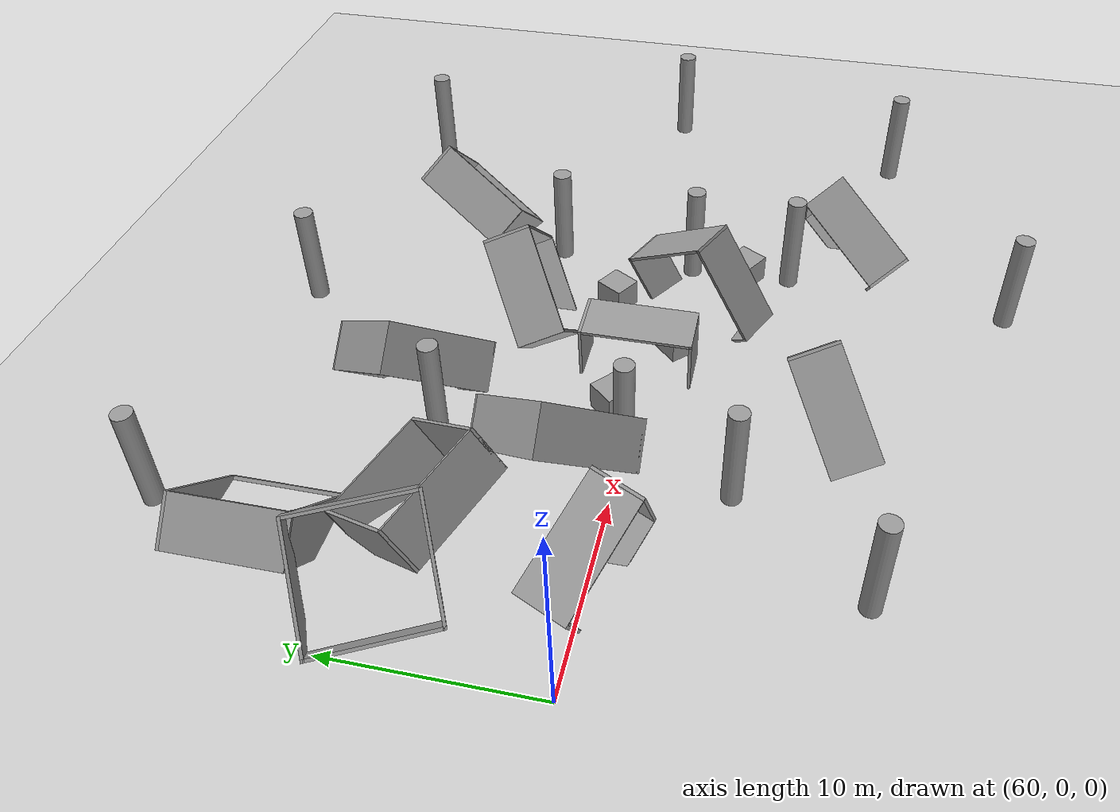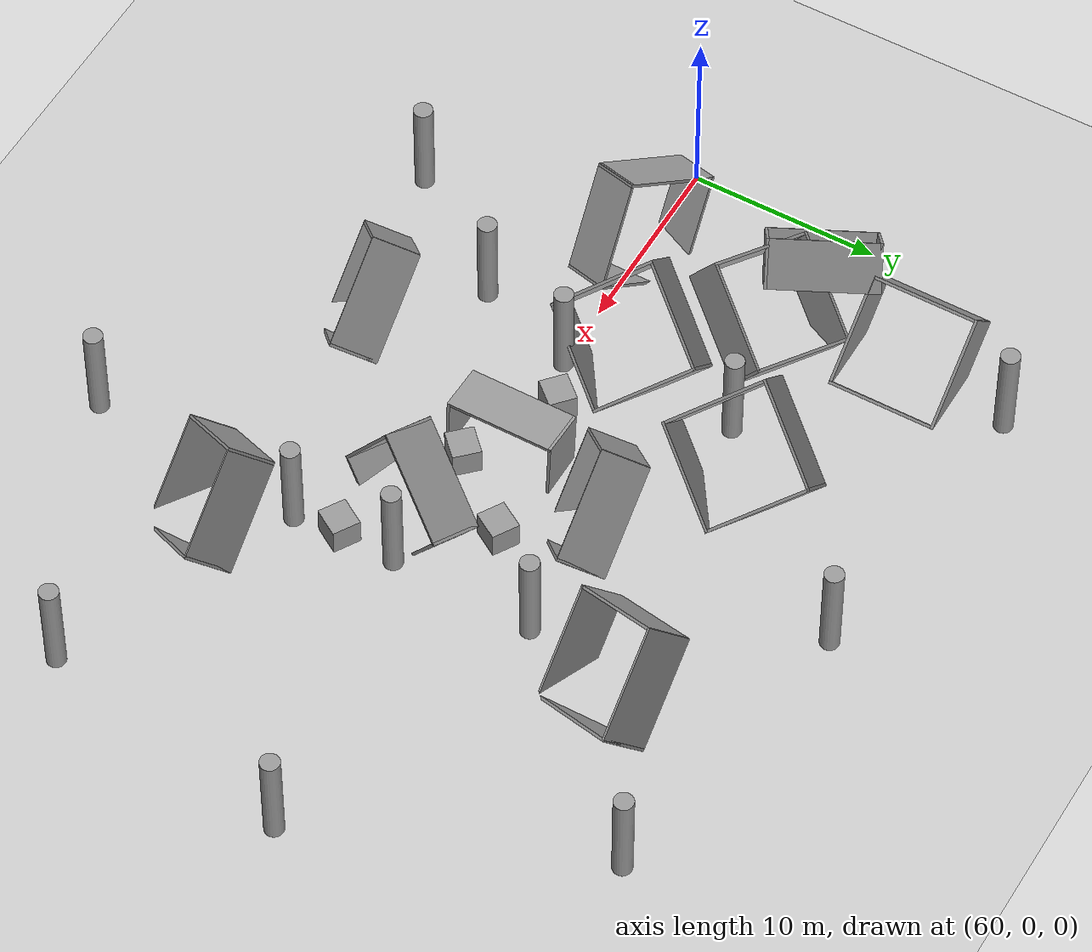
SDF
<sdf version="1.6">
 <world name="default">
  <model name="ground_plane">
   <static>1</static>
   <link name="link">
    <collision name="collision">
     <geometry><plane><normal>0 0 1</normal><size>400 400</size></plane></geometry>
     <surface><friction><ode><mu>100</mu><mu2>50</mu2></ode></friction></surface>
    </collision>
    <visual name="visual">
     <cast_shadows>0</cast_shadows>
     <geometry><plane><normal>0 0 1</normal><size>200 200</size></plane></geometry>
     <material>
      <script><uri>file://media/materials/scripts/gazebo.material</uri><name>Gazebo/Grey</name></script>
     </material>
    </visual>
    <gravity>0</gravity>
   </link>
  </model>
  <model name="unit_cylinder_0_clone_14_clone_9_clone_6_clone_3_clone_18_clone_15_clone_3">
   <static>1</static>
   <pose>66.2133 20.4668 2.40172 0 -0 0.001073</pose>
   <link name="link">
    <inertial>
     <mass>1</mass>
     <inertia><ixx>0.145833</ixx><ixy>0</ixy><ixz>0</ixz><iyy>0.145833</iyy><iyz>0</iyz><izz>0.125</izz></inertia>
    </inertial>
    <collision name="collision">
     <geometry><cylinder><radius>0.5</radius><length>6.03342</length></cylinder></geometry>
     <surface><contact><collide_without_contact>1</collide_without_contact></contact></surface>
    </collision>
    <visual name="visual">
     <geometry><cylinder><radius>0.5</radius><length>6.03342</length></cylinder></geometry>
     <material>
      <script><name>Gazebo/Grey</name><uri>file://media/materials/scripts/gazebo.material</uri></script>
     </material>
    </visual>
    <gravity>0</gravity>
   </link>
  </model>
  <model name="unit_cylinder_0_clone_14_clone_9_clone_6_clone_3_clone_18_clone_15_clone_4">
   <static>1</static>
   <pose>73.043 9.13728 2.40172 0 -0 0.001073</pose>
   <link name="link">
    <inertial>
     <mass>1</mass>
     <inertia><ixx>0.145833</ixx><ixy>0</ixy><ixz>0</ixz><iyy>0.145833</iyy><iyz>0</iyz><izz>0.125</izz></inertia>
    </inertial>
    <collision name="collision">
     <geometry><cylinder><radius>0.5</radius><length>6.03342</length></cylinder></geometry>
     <surface><contact><collide_without_contact>1</collide_without_contact></contact></surface>
    </collision>
    <visual name="visual">
     <geometry><cylinder><radius>0.5</radius><length>6.03342</length></cylinder></geometry>
     <material>
      <script><name>Gazebo/Grey</name><uri>file://media/materials/scripts/gazebo.material</uri></script>
     </material>
    </visual>
    <gravity>0</gravity>
   </link>
  </model>
  <model name="unit_cylinder_0_clone_14_clone_9_clone_6_clone_3_clone_18_clone_15_clone_5">
   <static>1</static>
   <pose>71.6287 -5.40245 2.40172 0 -0 0.001073</pose>
   <link name="link">
    <inertial>
     <mass>1</mass>
     <inertia><ixx>0.145833</ixx><ixy>0</ixy><ixz>0</ixz><iyy>0.145833</iyy><iyz>0</iyz><izz>0.125</izz></inertia>
    </inertial>
    <collision name="collision">
     <geometry><cylinder><radius>0.5</radius><length>6.03342</length></cylinder></geometry>
     <surface><contact><collide_without_contact>1</collide_without_contact></contact></surface>
    </collision>
    <visual name="visual">
     <geometry><cylinder><radius>0.5</radius><length>6.03342</length></cylinder></geometry>
     <material>
      <script><name>Gazebo/Grey</name><uri>file://media/materials/scripts/gazebo.material</uri></script>
     </material>
    </visual>
    <gravity>0</gravity>
   </link>
  </model>
  <model name="unit_cylinder_0_clone_14_clone_9_clone_6_clone_3_clone_18_clone_15_clone_6">
   <static>1</static>
   <pose>66.8761 -11.8217 2.40172 0 -0 0.001073</pose>
   <link name="link">
    <inertial>
     <mass>1</mass>
     <inertia><ixx>0.145833</ixx><ixy>0</ixy><ixz>0</ixz><iyy>0.145833</iyy><iyz>0</iyz><izz>0.125</izz></inertia>
    </inertial>
    <collision name="collision">
     <geometry><cylinder><radius>0.5</radius><length>6.03342</length></cylinder></geometry>
     <surface><contact><collide_without_contact>1</collide_without_contact></contact></surface>
    </collision>
    <visual name="visual">
     <geometry><cylinder><radius>0.5</radius><length>6.03342</length></cylinder></geometry>
     <material>
      <script><name>Gazebo/Grey</name><uri>file://media/materials/scripts/gazebo.material</uri></script>
     </material>
    </visual>
    <gravity>0</gravity>
   </link>
  </model>
  <model name="unit_cylinder_0_clone_14_clone_9_clone_6_clone_3_clone_18_clone_15_clone_7">
   <static>1</static>
   <pose>81.7922 19.1704 2.40172 0 -0 0.001073</pose>
   <link name="link">
    <inertial>
     <mass>1</mass>
     <inertia><ixx>0.145833</ixx><ixy>0</ixy><ixz>0</ixz><iyy>0.145833</iyy><iyz>0</iyz><izz>0.125</izz></inertia>
    </inertial>
    <collision name="collision">
     <geometry><cylinder><radius>0.5</radius><length>6.03342</length></cylinder></geometry>
     <surface><contact><collide_without_contact>1</collide_without_contact></contact></surface>
    </collision>
    <visual name="visual">
     <geometry><cylinder><radius>0.5</radius><length>6.03342</length></cylinder></geometry>
     <material>
      <script><name>Gazebo/Grey</name><uri>file://media/materials/scripts/gazebo.material</uri></script>
     </material>
    </visual>
    <gravity>0</gravity>
   </link>
  </model>
  <model name="unit_cylinder_0_clone_14_clone_9_clone_6_clone_3_clone_18_clone_15_clone_8">
   <static>1</static>
   <pose>88.27 6.5423 2.40172 0 -0 0.001073</pose>
   <link name="link">
    <inertial>
     <mass>1</mass>
     <inertia><ixx>0.145833</ixx><ixy>0</ixy><ixz>0</ixz><iyy>0.145833</iyy><iyz>0</iyz><izz>0.125</izz></inertia>
    </inertial>
    <collision name="collision">
     <geometry><cylinder><radius>0.5</radius><length>6.03342</length></cylinder></geometry>
     <surface><contact><collide_without_contact>1</collide_without_contact></contact></surface>
    </collision>
    <visual name="visual">
     <geometry><cylinder><radius>0.5</radius><length>6.03342</length></cylinder></geometry>
     <material>
      <script><name>Gazebo/Grey</name><uri>file://media/materials/scripts/gazebo.material</uri></script>
     </material>
    </visual>
    <gravity>0</gravity>
   </link>
  </model>
  <model name="unit_cylinder_0_clone_14_clone_9_clone_6_clone_3_clone_18_clone_15_clone_9">
   <static>1</static>
   <pose>88.19 -6.58487 2.40172 0 -0 0.001073</pose>
   <link name="link">
    <inertial>
     <mass>1</mass>
     <inertia><ixx>0.145833</ixx><ixy>0</ixy><ixz>0</ixz><iyy>0.145833</iyy><iyz>0</iyz><izz>0.125</izz></inertia>
    </inertial>
    <collision name="collision">
     <geometry><cylinder><radius>0.5</radius><length>6.03342</length></cylinder></geometry>
     <surface><contact><collide_without_contact>1</collide_without_contact></contact></surface>
    </collision>
    <visual name="visual">
     <geometry><cylinder><radius>0.5</radius><length>6.03342</length></cylinder></geometry>
     <material>
      <script><name>Gazebo/Grey</name><uri>file://media/materials/scripts/gazebo.material</uri></script>
     </material>
    </visual>
    <gravity>0</gravity>
   </link>
  </model>
  <model name="unit_cylinder_0_clone_14_clone_9_clone_6_clone_3_clone_18_clone_15_clone_10">
   <static>1</static>
   <pose>87.037 -18.3775 2.40172 0 -0 0.001073</pose>
   <link name="link">
    <inertial>
     <mass>1</mass>
     <inertia><ixx>0.145833</ixx><ixy>0</ixy><ixz>0</ixz><iyy>0.145833</iyy><iyz>0</iyz><izz>0.125</izz></inertia>
    </inertial>
    <collision name="collision">
     <geometry><cylinder><radius>0.5</radius><length>6.03342</length></cylinder></geometry>
     <surface><contact><collide_without_contact>1</collide_without_contact></contact></surface>
    </collision>
    <visual name="visual">
     <geometry><cylinder><radius>0.5</radius><length>6.03342</length></cylinder></geometry>
     <material>
      <script><name>Gazebo/Grey</name><uri>file://media/materials/scripts/gazebo.material</uri></script>
     </material>
    </visual>
    <gravity>0</gravity>
   </link>
  </model>
  <model name="unit_cylinder_0_clone_14_clone_9_clone_6_clone_3_clone_18_clone_15_clone_11">
   <static>1</static>
   <pose>97.6746 16.837 2.40172 0 -0 0.001073</pose>
   <link name="link">
    <inertial>
     <mass>1</mass>
     <inertia><ixx>0.145833</ixx><ixy>0</ixy><ixz>0</ixz><iyy>0.145833</iyy><iyz>0</iyz><izz>0.125</izz></inertia>
    </inertial>
    <collision name="collision">
     <geometry><cylinder><radius>0.5</radius><length>6.03342</length></cylinder></geometry>
     <surface><contact><collide_without_contact>1</collide_without_contact></contact></surface>
    </collision>
    <visual name="visual">
     <geometry><cylinder><radius>0.5</radius><length>6.03342</length></cylinder></geometry>
     <material>
      <script><name>Gazebo/Grey</name><uri>file://media/materials/scripts/gazebo.material</uri></script>
     </material>
    </visual>
    <gravity>0</gravity>
   </link>
  </model>
  <model name="unit_cylinder_0_clone_14_clone_9_clone_6_clone_3_clone_18_clone_15_clone_12">
   <static>1</static>
   <pose>103.808 1.8459 2.40172 0 -0 0.001073</pose>
   <link name="link">
    <inertial>
     <mass>1</mass>
     <inertia><ixx>0.145833</ixx><ixy>0</ixy><ixz>0</ixz><iyy>0.145833</iyy><iyz>0</iyz><izz>0.125</izz></inertia>
    </inertial>
    <collision name="collision">
     <geometry><cylinder><radius>0.5</radius><length>6.03342</length></cylinder></geometry>
     <surface><contact><collide_without_contact>1</collide_without_contact></contact></surface>
    </collision>
    <visual name="visual">
     <geometry><cylinder><radius>0.5</radius><length>6.03342</length></cylinder></geometry>
     <material>
      <script><name>Gazebo/Grey</name><uri>file://media/materials/scripts/gazebo.material</uri></script>
     </material>
    </visual>
    <gravity>0</gravity>
   </link>
  </model>
  <model name="unit_cylinder_0_clone_14_clone_9_clone_6_clone_3_clone_18_clone_15_clone_13">
   <static>1</static>
   <pose>100.802 -12.029 2.40172 0 -0 0.001073</pose>
   <link name="link">
    <inertial>
     <mass>1</mass>
     <inertia><ixx>0.145833</ixx><ixy>0</ixy><ixz>0</ixz><iyy>0.145833</iyy><iyz>0</iyz><izz>0.125</izz></inertia>
    </inertial>
    <collision name="collision">
     <geometry><cylinder><radius>0.5</radius><length>6.03342</length></cylinder></geometry>
     <surface><contact><collide_without_contact>1</collide_without_contact></contact></surface>
    </collision>
    <visual name="visual">
     <geometry><cylinder><radius>0.5</radius><length>6.03342</length></cylinder></geometry>
     <material>
      <script><name>Gazebo/Grey</name><uri>file://media/materials/scripts/gazebo.material</uri></script>
     </material>
    </visual>
    <gravity>0</gravity>
   </link>
  </model>
  <model name="vRoom_clone_3_clone_clone_0">
   <pose>63.8004 9.0852 1.11989 0.790651 -0.010636 -1.10345</pose>
   <link name="Wall_0">
    <collision name="Wall_0_Collision">
     <geometry><box><size>5.75 0.15 2.5</size></box></geometry>
     <pose>0 0 1.25 0 -0 0</pose>
    </collision>
    <visual name="Wall_0_Visual">
     <pose>0 0 1.25 0 -0 0</pose>
     <geometry><box><size>5.75 0.15 2.5</size></box></geometry>
     <material>
      <script><uri>file://media/materials/scripts/gazebo.material</uri><name>Gazebo/Grey</name></script>
      <ambient>1 1 1 1</ambient>
     </material>
    </visual>
    <pose>-2.8 -0 0 0 0 -1.5708</pose>
    <velocity_decay><linear>0</linear><angular>0</angular></velocity_decay>
   </link>
   <link name="Wall_1">
    <collision name="Wall_1_Collision">
     <geometry><box><size>5.75 0.15 2.5</size></box></geometry>
     <pose>0 0 1.25 0 -0 0</pose>
    </collision>
    <visual name="Wall_1_Visual">
     <pose>0 0 1.25 0 -0 0</pose>
     <geometry><box><size>5.75 0.15 2.5</size></box></geometry>
     <material>
      <script><uri>file://media/materials/scripts/gazebo.material</uri><name>Gazebo/Grey</name></script>
      <ambient>1 1 1 1</ambient>
     </material>
    </visual>
    <pose>0 -2.8 0 0 -0 0</pose>
    <velocity_decay><linear>0</linear><angular>0</angular></velocity_decay>
   </link>
   <link name="Wall_2">
    <collision name="Wall_2_Collision">
     <geometry><box><size>5.75 0.15 2.5</size></box></geometry>
     <pose>0 0 1.25 0 -0 0</pose>
    </collision>
    <visual name="Wall_2_Visual">
     <pose>0 0 1.25 0 -0 0</pose>
     <geometry><box><size>5.75 0.15 2.5</size></box></geometry>
     <material>
      <script><uri>file://media/materials/scripts/gazebo.material</uri><name>Gazebo/Grey</name></script>
      <ambient>1 1 1 1</ambient>
     </material>
    </visual>
    <pose>2.8 -0 0 0 -0 1.5708</pose>
    <velocity_decay><linear>0</linear><angular>0</angular></velocity_decay>
   </link>
   <link name="Wall_3">
    <collision name="Wall_3_Collision">
     <geometry><box><size>5.75 0.15 2.5</size></box></geometry>
     <pose>0 0 1.25 0 -0 0</pose>
    </collision>
    <visual name="Wall_3_Visual">
     <pose>0 0 1.25 0 -0 0</pose>
     <geometry><box><size>5.75 0.15 2.5</size></box></geometry>
     <material>
      <script><uri>file://media/materials/scripts/gazebo.material</uri><name>Gazebo/Grey</name></script>
      <ambient>1 1 1 1</ambient>
     </material>
    </visual>
    <pose>0 2.8 0 0 -0 3.14159</pose>
    <velocity_decay><linear>0</linear><angular>0</angular></velocity_decay>
   </link>
   <static>1</static>
  </model>
  <model name="vRoom_clone_3_clone_clone_1">
   <pose>65.8757 1.00072 2.50816 1.95875 1.01829 3e-06</pose>
   <link name="Wall_0">
    <collision name="Wall_0_Collision">
     <geometry><box><size>5.75 0.15 2.5</size></box></geometry>
     <pose>0 0 1.25 0 -0 0</pose>
    </collision>
    <visual name="Wall_0_Visual">
     <pose>0 0 1.25 0 -0 0</pose>
     <geometry><box><size>5.75 0.15 2.5</size></box></geometry>
     <material>
      <script><uri>file://media/materials/scripts/gazebo.material</uri><name>Gazebo/Grey</name></script>
      <ambient>1 1 1 1</ambient>
     </material>
    </visual>
    <pose>-2.8 -0 0 0 0 -1.5708</pose>
    <velocity_decay><linear>0</linear><angular>0</angular></velocity_decay>
   </link>
   <link name="Wall_1">
    <collision name="Wall_1_Collision">
     <geometry><box><size>5.75 0.15 2.5</size></box></geometry>
     <pose>0 0 1.25 0 -0 0</pose>
    </collision>
    <visual name="Wall_1_Visual">
     <pose>0 0 1.25 0 -0 0</pose>
     <geometry><box><size>5.75 0.15 2.5</size></box></geometry>
     <material>
      <script><uri>file://media/materials/scripts/gazebo.material</uri><name>Gazebo/Grey</name></script>
      <ambient>1 1 1 1</ambient>
     </material>
    </visual>
    <pose>0 -2.8 0 0 -0 0</pose>
    <velocity_decay><linear>0</linear><angular>0</angular></velocity_decay>
   </link>
   <link name="Wall_2">
    <collision name="Wall_2_Collision">
     <geometry><box><size>5.75 0.15 2.5</size></box></geometry>
     <pose>0 0 1.25 0 -0 0</pose>
    </collision>
    <visual name="Wall_2_Visual">
     <pose>0 0 1.25 0 -0 0</pose>
     <geometry><box><size>5.75 0.15 2.5</size></box></geometry>
     <material>
      <script><uri>file://media/materials/scripts/gazebo.material</uri><name>Gazebo/Grey</name></script>
      <ambient>1 1 1 1</ambient>
     </material>
    </visual>
    <pose>2.8 -0 0 0 -0 1.5708</pose>
    <velocity_decay><linear>0</linear><angular>0</angular></velocity_decay>
   </link>
   <link name="Wall_3">
    <collision name="Wall_3_Collision">
     <geometry><box><size>5.75 0.15 2.5</size></box></geometry>
     <pose>0 0 1.25 0 -0 0</pose>
    </collision>
    <visual name="Wall_3_Visual">
     <pose>0 0 1.25 0 -0 0</pose>
     <geometry><box><size>5.75 0.15 2.5</size></box></geometry>
     <material>
      <script><uri>file://media/materials/scripts/gazebo.material</uri><name>Gazebo/Grey</name></script>
      <ambient>1 1 1 1</ambient>
     </material>
    </visual>
    <pose>0 2.8 0 0 -0 3.14159</pose>
    <velocity_decay><linear>0</linear><angular>0</angular></velocity_decay>
   </link>
   <static>1</static>
  </model>
  <model name="vRoom_clone_3_clone_clone_3">
   <pose>74.6265 11.0899 1.31439 -0.65154 0.538165 -0.979046</pose>
   <link name="Wall_0">
    <collision name="Wall_0_Collision">
     <geometry><box><size>5.75 0.15 2.5</size></box></geometry>
     <pose>0 0 1.25 0 -0 0</pose>
    </collision>
    <visual name="Wall_0_Visual">
     <pose>0 0 1.25 0 -0 0</pose>
     <geometry><box><size>5.75 0.15 2.5</size></box></geometry>
     <material>
      <script><uri>file://media/materials/scripts/gazebo.material</uri><name>Gazebo/Grey</name></script>
      <ambient>1 1 1 1</ambient>
     </material>
    </visual>
    <pose>-2.8 -0 0 0 0 -1.5708</pose>
    <velocity_decay><linear>0</linear><angular>0</angular></velocity_decay>
   </link>
   <link name="Wall_1">
    <collision name="Wall_1_Collision">
     <geometry><box><size>5.75 0.15 2.5</size></box></geometry>
     <pose>0 0 1.25 0 -0 0</pose>
    </collision>
    <visual name="Wall_1_Visual">
     <pose>0 0 1.25 0 -0 0</pose>
     <geometry><box><size>5.75 0.15 2.5</size></box></geometry>
     <material>
      <script><uri>file://media/materials/scripts/gazebo.material</uri><name>Gazebo/Grey</name></script>
      <ambient>1 1 1 1</ambient>
     </material>
    </visual>
    <pose>0 -2.8 0 0 -0 0</pose>
    <velocity_decay><linear>0</linear><angular>0</angular></velocity_decay>
   </link>
   <link name="Wall_2">
    <collision name="Wall_2_Collision">
     <geometry><box><size>5.75 0.15 2.5</size></box></geometry>
     <pose>0 0 1.25 0 -0 0</pose>
    </collision>
    <visual name="Wall_2_Visual">
     <pose>0 0 1.25 0 -0 0</pose>
     <geometry><box><size>5.75 0.15 2.5</size></box></geometry>
     <material>
      <script><uri>file://media/materials/scripts/gazebo.material</uri><name>Gazebo/Grey</name></script>
      <ambient>1 1 1 1</ambient>
     </material>
    </visual>
    <pose>2.8 -0 0 0 -0 1.5708</pose>
    <velocity_decay><linear>0</linear><angular>0</angular></velocity_decay>
   </link>
   <link name="Wall_3">
    <collision name="Wall_3_Collision">
     <geometry><box><size>5.75 0.15 2.5</size></box></geometry>
     <pose>0 0 1.25 0 -0 0</pose>
    </collision>
    <visual name="Wall_3_Visual">
     <pose>0 0 1.25 0 -0 0</pose>
     <geometry><box><size>5.75 0.15 2.5</size></box></geometry>
     <material>
      <script><uri>file://media/materials/scripts/gazebo.material</uri><name>Gazebo/Grey</name></script>
      <ambient>1 1 1 1</ambient>
     </material>
    </visual>
    <pose>0 2.8 0 0 -0 3.14159</pose>
    <velocity_decay><linear>0</linear><angular>0</angular></velocity_decay>
   </link>
   <static>1</static>
  </model>
  <model name="vRoom_clone_3_clone_clone_4">
   <pose>78.3066 0.427275 0.08658 -5e-06 1.50155 -8e-06</pose>
   <link name="Wall_0">
    <collision name="Wall_0_Collision">
     <geometry><box><size>5.75 0.15 2.5</size></box></geometry>
     <pose>0 0 1.25 0 -0 0</pose>
    </collision>
    <visual name="Wall_0_Visual">
     <pose>0 0 1.25 0 -0 0</pose>
     <geometry><box><size>5.75 0.15 2.5</size></box></geometry>
     <material>
      <script><uri>file://media/materials/scripts/gazebo.material</uri><name>Gazebo/Grey</name></script>
      <ambient>1 1 1 1</ambient>
     </material>
    </visual>
    <pose>-2.8 -0 0 0 0 -1.5708</pose>
    <velocity_decay><linear>0</linear><angular>0</angular></velocity_decay>
   </link>
   <link name="Wall_1">
    <collision name="Wall_1_Collision">
     <geometry><box><size>5.75 0.15 2.5</size></box></geometry>
     <pose>0 0 1.25 0 -0 0</pose>
    </collision>
    <visual name="Wall_1_Visual">
     <pose>0 0 1.25 0 -0 0</pose>
     <geometry><box><size>5.75 0.15 2.5</size></box></geometry>
     <material>
      <script><uri>file://media/materials/scripts/gazebo.material</uri><name>Gazebo/Grey</name></script>
      <ambient>1 1 1 1</ambient>
     </material>
    </visual>
    <pose>0 -2.8 0 0 -0 0</pose>
    <velocity_decay><linear>0</linear><angular>0</angular></velocity_decay>
   </link>
   <link name="Wall_2">
    <collision name="Wall_2_Collision">
     <geometry><box><size>5.75 0.15 2.5</size></box></geometry>
     <pose>0 0 1.25 0 -0 0</pose>
    </collision>
    <visual name="Wall_2_Visual">
     <pose>0 0 1.25 0 -0 0</pose>
     <geometry><box><size>5.75 0.15 2.5</size></box></geometry>
     <material>
      <script><uri>file://media/materials/scripts/gazebo.material</uri><name>Gazebo/Grey</name></script>
      <ambient>1 1 1 1</ambient>
     </material>
    </visual>
    <pose>2.8 -0 0 0 -0 1.5708</pose>
    <velocity_decay><linear>0</linear><angular>0</angular></velocity_decay>
   </link>
   <link name="Wall_3">
    <collision name="Wall_3_Collision">
     <geometry><box><size>5.75 0.15 2.5</size></box></geometry>
     <pose>0 0 1.25 0 -0 0</pose>
    </collision>
    <visual name="Wall_3_Visual">
     <pose>0 0 1.25 0 -0 0</pose>
     <geometry><box><size>5.75 0.15 2.5</size></box></geometry>
     <material>
      <script><uri>file://media/materials/scripts/gazebo.material</uri><name>Gazebo/Grey</name></script>
      <ambient>1 1 1 1</ambient>
     </material>
    </visual>
    <pose>0 2.8 0 0 -0 3.14159</pose>
    <velocity_decay><linear>0</linear><angular>0</angular></velocity_decay>
   </link>
   <static>1</static>
  </model>
  <model name="vRoom_clone_3_clone_clone_5">
   <pose>75.6109 -8.38772 1.92582 1.10126 0.720917 -2e-06</pose>
   <link name="Wall_0">
    <collision name="Wall_0_Collision">
     <geometry><box><size>5.75 0.15 2.5</size></box></geometry>
     <pose>0 0 1.25 0 -0 0</pose>
    </collision>
    <visual name="Wall_0_Visual">
     <pose>0 0 1.25 0 -0 0</pose>
     <geometry><box><size>5.75 0.15 2.5</size></box></geometry>
     <material>
      <script><uri>file://media/materials/scripts/gazebo.material</uri><name>Gazebo/Grey</name></script>
      <ambient>1 1 1 1</ambient>
     </material>
    </visual>
    <pose>-2.8 -0 0 0 0 -1.5708</pose>
    <velocity_decay><linear>0</linear><angular>0</angular></velocity_decay>
   </link>
   <link name="Wall_1">
    <collision name="Wall_1_Collision">
     <geometry><box><size>5.75 0.15 2.5</size></box></geometry>
     <pose>0 0 1.25 0 -0 0</pose>
    </collision>
    <visual name="Wall_1_Visual">
     <pose>0 0 1.25 0 -0 0</pose>
     <geometry><box><size>5.75 0.15 2.5</size></box></geometry>
     <material>
      <script><uri>file://media/materials/scripts/gazebo.material</uri><name>Gazebo/Grey</name></script>
      <ambient>1 1 1 1</ambient>
     </material>
    </visual>
    <pose>0 -2.8 0 0 -0 0</pose>
    <velocity_decay><linear>0</linear><angular>0</angular></velocity_decay>
   </link>
   <link name="Wall_2">
    <collision name="Wall_2_Collision">
     <geometry><box><size>5.75 0.15 2.5</size></box></geometry>
     <pose>0 0 1.25 0 -0 0</pose>
    </collision>
    <visual name="Wall_2_Visual">
     <pose>0 0 1.25 0 -0 0</pose>
     <geometry><box><size>5.75 0.15 2.5</size></box></geometry>
     <material>
      <script><uri>file://media/materials/scripts/gazebo.material</uri><name>Gazebo/Grey</name></script>
      <ambient>1 1 1 1</ambient>
     </material>
    </visual>
    <pose>2.8 -0 0 0 -0 1.5708</pose>
    <velocity_decay><linear>0</linear><angular>0</angular></velocity_decay>
   </link>
   <link name="Wall_3">
    <collision name="Wall_3_Collision">
     <geometry><box><size>5.75 0.15 2.5</size></box></geometry>
     <pose>0 0 1.25 0 -0 0</pose>
    </collision>
    <visual name="Wall_3_Visual">
     <pose>0 0 1.25 0 -0 0</pose>
     <geometry><box><size>5.75 0.15 2.5</size></box></geometry>
     <material>
      <script><uri>file://media/materials/scripts/gazebo.material</uri><name>Gazebo/Grey</name></script>
      <ambient>1 1 1 1</ambient>
     </material>
    </visual>
    <pose>0 2.8 0 0 -0 3.14159</pose>
    <velocity_decay><linear>0</linear><angular>0</angular></velocity_decay>
   </link>
   <static>1</static>
  </model>
  <model name="vRoom_clone_3_clone_clone_6">
   <pose>88.8056 12.3904 1.28776 0.589913 0.720917 5e-06</pose>
   <link name="Wall_0">
    <collision name="Wall_0_Collision">
     <geometry><box><size>5.75 0.15 2.5</size></box></geometry>
     <pose>0 0 1.25 0 -0 0</pose>
    </collision>
    <visual name="Wall_0_Visual">
     <pose>0 0 1.25 0 -0 0</pose>
     <geometry><box><size>5.75 0.15 2.5</size></box></geometry>
     <material>
      <script><uri>file://media/materials/scripts/gazebo.material</uri><name>Gazebo/Grey</name></script>
      <ambient>1 1 1 1</ambient>
     </material>
    </visual>
    <pose>-2.8 -0 0 0 0 -1.5708</pose>
    <velocity_decay><linear>0</linear><angular>0</angular></velocity_decay>
   </link>
   <link name="Wall_1">
    <collision name="Wall_1_Collision">
     <geometry><box><size>5.75 0.15 2.5</size></box></geometry>
     <pose>0 0 1.25 0 -0 0</pose>
    </collision>
    <visual name="Wall_1_Visual">
     <pose>0 0 1.25 0 -0 0</pose>
     <geometry><box><size>5.75 0.15 2.5</size></box></geometry>
     <material>
      <script><uri>file://media/materials/scripts/gazebo.material</uri><name>Gazebo/Grey</name></script>
      <ambient>1 1 1 1</ambient>
     </material>
    </visual>
    <pose>0 -2.8 0 0 -0 0</pose>
    <velocity_decay><linear>0</linear><angular>0</angular></velocity_decay>
   </link>
   <link name="Wall_2">
    <collision name="Wall_2_Collision">
     <geometry><box><size>5.75 0.15 2.5</size></box></geometry>
     <pose>0 0 1.25 0 -0 0</pose>
    </collision>
    <visual name="Wall_2_Visual">
     <pose>0 0 1.25 0 -0 0</pose>
     <geometry><box><size>5.75 0.15 2.5</size></box></geometry>
     <material>
      <script><uri>file://media/materials/scripts/gazebo.material</uri><name>Gazebo/Grey</name></script>
      <ambient>1 1 1 1</ambient>
     </material>
    </visual>
    <pose>2.8 -0 0 0 -0 1.5708</pose>
    <velocity_decay><linear>0</linear><angular>0</angular></velocity_decay>
   </link>
   <link name="Wall_3">
    <collision name="Wall_3_Collision">
     <geometry><box><size>5.75 0.15 2.5</size></box></geometry>
     <pose>0 0 1.25 0 -0 0</pose>
    </collision>
    <visual name="Wall_3_Visual">
     <pose>0 0 1.25 0 -0 0</pose>
     <geometry><box><size>5.75 0.15 2.5</size></box></geometry>
     <material>
      <script><uri>file://media/materials/scripts/gazebo.material</uri><name>Gazebo/Grey</name></script>
      <ambient>1 1 1 1</ambient>
     </material>
    </visual>
    <pose>0 2.8 0 0 -0 3.14159</pose>
    <velocity_decay><linear>0</linear><angular>0</angular></velocity_decay>
   </link>
   <static>1</static>
  </model>
  <model name="vRoom_clone_3_clone_clone_7">
   <pose>83.7956 -1.34634 1.26397 1.44696 0.566705 1.01502</pose>
   <link name="Wall_0">
    <collision name="Wall_0_Collision">
     <geometry><box><size>5.75 0.15 2.5</size></box></geometry>
     <pose>0 0 1.25 0 -0 0</pose>
    </collision>
    <visual name="Wall_0_Visual">
     <pose>0 0 1.25 0 -0 0</pose>
     <geometry><box><size>5.75 0.15 2.5</size></box></geometry>
     <material>
      <script><uri>file://media/materials/scripts/gazebo.material</uri><name>Gazebo/Grey</name></script>
      <ambient>1 1 1 1</ambient>
     </material>
    </visual>
    <pose>-2.8 -0 0 0 0 -1.5708</pose>
    <velocity_decay><linear>0</linear><angular>0</angular></velocity_decay>
   </link>
   <link name="Wall_1">
    <collision name="Wall_1_Collision">
     <geometry><box><size>5.75 0.15 2.5</size></box></geometry>
     <pose>0 0 1.25 0 -0 0</pose>
    </collision>
    <visual name="Wall_1_Visual">
     <pose>0 0 1.25 0 -0 0</pose>
     <geometry><box><size>5.75 0.15 2.5</size></box></geometry>
     <material>
      <script><uri>file://media/materials/scripts/gazebo.material</uri><name>Gazebo/Grey</name></script>
      <ambient>1 1 1 1</ambient>
     </material>
    </visual>
    <pose>0 -2.8 0 0 -0 0</pose>
    <velocity_decay><linear>0</linear><angular>0</angular></velocity_decay>
   </link>
   <link name="Wall_2">
    <collision name="Wall_2_Collision">
     <geometry><box><size>5.75 0.15 2.5</size></box></geometry>
     <pose>0 0 1.25 0 -0 0</pose>
    </collision>
    <visual name="Wall_2_Visual">
     <pose>0 0 1.25 0 -0 0</pose>
     <geometry><box><size>5.75 0.15 2.5</size></box></geometry>
     <material>
      <script><uri>file://media/materials/scripts/gazebo.material</uri><name>Gazebo/Grey</name></script>
      <ambient>1 1 1 1</ambient>
     </material>
    </visual>
    <pose>2.8 -0 0 0 -0 1.5708</pose>
    <velocity_decay><linear>0</linear><angular>0</angular></velocity_decay>
   </link>
   <link name="Wall_3">
    <collision name="Wall_3_Collision">
     <geometry><box><size>5.75 0.15 2.5</size></box></geometry>
     <pose>0 0 1.25 0 -0 0</pose>
    </collision>
    <visual name="Wall_3_Visual">
     <pose>0 0 1.25 0 -0 0</pose>
     <geometry><box><size>5.75 0.15 2.5</size></box></geometry>
     <material>
      <script><uri>file://media/materials/scripts/gazebo.material</uri><name>Gazebo/Grey</name></script>
      <ambient>1 1 1 1</ambient>
     </material>
    </visual>
    <pose>0 2.8 0 0 -0 3.14159</pose>
    <velocity_decay><linear>0</linear><angular>0</angular></velocity_decay>
   </link>
   <static>1</static>
  </model>
  <model name="vRoom_clone_3_clone_clone_8">
   <pose>90.7898 -10.8285 2.75346 -2.34607 0.72092 3e-06</pose>
   <link name="Wall_0">
    <collision name="Wall_0_Collision">
     <geometry><box><size>5.75 0.15 2.5</size></box></geometry>
     <pose>0 0 1.25 0 -0 0</pose>
    </collision>
    <visual name="Wall_0_Visual">
     <pose>0 0 1.25 0 -0 0</pose>
     <geometry><box><size>5.75 0.15 2.5</size></box></geometry>
     <material>
      <script><uri>file://media/materials/scripts/gazebo.material</uri><name>Gazebo/Grey</name></script>
      <ambient>1 1 1 1</ambient>
     </material>
    </visual>
    <pose>-2.8 -0 0 0 0 -1.5708</pose>
    <velocity_decay><linear>0</linear><angular>0</angular></velocity_decay>
   </link>
   <link name="Wall_1">
    <collision name="Wall_1_Collision">
     <geometry><box><size>5.75 0.15 2.5</size></box></geometry>
     <pose>0 0 1.25 0 -0 0</pose>
    </collision>
    <visual name="Wall_1_Visual">
     <pose>0 0 1.25 0 -0 0</pose>
     <geometry><box><size>5.75 0.15 2.5</size></box></geometry>
     <material>
      <script><uri>file://media/materials/scripts/gazebo.material</uri><name>Gazebo/Grey</name></script>
      <ambient>1 1 1 1</ambient>
     </material>
    </visual>
    <pose>0 -2.8 0 0 -0 0</pose>
    <velocity_decay><linear>0</linear><angular>0</angular></velocity_decay>
   </link>
   <link name="Wall_2">
    <collision name="Wall_2_Collision">
     <geometry><box><size>5.75 0.15 2.5</size></box></geometry>
     <pose>0 0 1.25 0 -0 0</pose>
    </collision>
    <visual name="Wall_2_Visual">
     <pose>0 0 1.25 0 -0 0</pose>
     <geometry><box><size>5.75 0.15 2.5</size></box></geometry>
     <material>
      <script><uri>file://media/materials/scripts/gazebo.material</uri><name>Gazebo/Grey</name></script>
      <ambient>1 1 1 1</ambient>
     </material>
    </visual>
    <pose>2.8 -0 0 0 -0 1.5708</pose>
    <velocity_decay><linear>0</linear><angular>0</angular></velocity_decay>
   </link>
   <link name="Wall_3">
    <collision name="Wall_3_Collision">
     <geometry><box><size>5.75 0.15 2.5</size></box></geometry>
     <pose>0 0 1.25 0 -0 0</pose>
    </collision>
    <visual name="Wall_3_Visual">
     <pose>0 0 1.25 0 -0 0</pose>
     <geometry><box><size>5.75 0.15 2.5</size></box></geometry>
     <material>
      <script><uri>file://media/materials/scripts/gazebo.material</uri><name>Gazebo/Grey</name></script>
      <ambient>1 1 1 1</ambient>
     </material>
    </visual>
    <pose>0 2.8 0 0 -0 3.14159</pose>
    <velocity_decay><linear>0</linear><angular>0</angular></velocity_decay>
   </link>
   <static>1</static>
  </model>
  <model name="vRoom_clone_3_clone_clone_3_clone">
   <pose>70.966 2.85286 1.31439 -0.65154 0.538165 -0.979046</pose>
   <link name="Wall_0">
    <collision name="Wall_0_Collision">
     <geometry><box><size>5.75 0.15 2.5</size></box></geometry>
     <pose>0 0 1.25 0 -0 0</pose>
    </collision>
    <visual name="Wall_0_Visual">
     <pose>0 0 1.25 0 -0 0</pose>
     <geometry><box><size>5.75 0.15 2.5</size></box></geometry>
     <material>
      <script><uri>file://media/materials/scripts/gazebo.material</uri><name>Gazebo/Grey</name></script>
      <ambient>1 1 1 1</ambient>
     </material>
    </visual>
    <pose>-2.8 -0 0 0 0 -1.5708</pose>
    <velocity_decay><linear>0</linear><angular>0</angular></velocity_decay>
   </link>
   <link name="Wall_1">
    <collision name="Wall_1_Collision">
     <geometry><box><size>5.75 0.15 2.5</size></box></geometry>
     <pose>0 0 1.25 0 -0 0</pose>
    </collision>
    <visual name="Wall_1_Visual">
     <pose>0 0 1.25 0 -0 0</pose>
     <geometry><box><size>5.75 0.15 2.5</size></box></geometry>
     <material>
      <script><uri>file://media/materials/scripts/gazebo.material</uri><name>Gazebo/Grey</name></script>
      <ambient>1 1 1 1</ambient>
     </material>
    </visual>
    <pose>0 -2.8 0 0 -0 0</pose>
    <velocity_decay><linear>0</linear><angular>0</angular></velocity_decay>
   </link>
   <link name="Wall_2">
    <collision name="Wall_2_Collision">
     <geometry><box><size>5.75 0.15 2.5</size></box></geometry>
     <pose>0 0 1.25 0 -0 0</pose>
    </collision>
    <visual name="Wall_2_Visual">
     <pose>0 0 1.25 0 -0 0</pose>
     <geometry><box><size>5.75 0.15 2.5</size></box></geometry>
     <material>
      <script><uri>file://media/materials/scripts/gazebo.material</uri><name>Gazebo/Grey</name></script>
      <ambient>1 1 1 1</ambient>
     </material>
    </visual>
    <pose>2.8 -0 0 0 -0 1.5708</pose>
    <velocity_decay><linear>0</linear><angular>0</angular></velocity_decay>
   </link>
   <link name="Wall_3">
    <collision name="Wall_3_Collision">
     <geometry><box><size>5.75 0.15 2.5</size></box></geometry>
     <pose>0 0 1.25 0 -0 0</pose>
    </collision>
    <visual name="Wall_3_Visual">
     <pose>0 0 1.25 0 -0 0</pose>
     <geometry><box><size>5.75 0.15 2.5</size></box></geometry>
     <material>
      <script><uri>file://media/materials/scripts/gazebo.material</uri><name>Gazebo/Grey</name></script>
      <ambient>1 1 1 1</ambient>
     </material>
    </visual>
    <pose>0 2.8 0 0 -0 3.14159</pose>
    <velocity_decay><linear>0</linear><angular>0</angular></velocity_decay>
   </link>
   <static>1</static>
  </model>
  <model name="vRoom_clone_3_clone_clone_9">
   <pose>64.3865 14.7466 3e-06 1e-06 0.720917 -1e-06</pose>
   <link name="Wall_0">
    <collision name="Wall_0_Collision">
     <geometry><box><size>5.75 0.15 2.5</size></box></geometry>
     <pose>0 0 1.25 0 -0 0</pose>
    </collision>
    <visual name="Wall_0_Visual">
     <pose>0 0 1.25 0 -0 0</pose>
     <geometry><box><size>5.75 0.15 2.5</size></box></geometry>
     <material>
      <script><uri>file://media/materials/scripts/gazebo.material</uri><name>Gazebo/Grey</name></script>
      <ambient>1 1 1 1</ambient>
     </material>
    </visual>
    <pose>-2.8 -0 0 0 0 -1.5708</pose>
    <velocity_decay><linear>0</linear><angular>0</angular></velocity_decay>
   </link>
   <link name="Wall_1">
    <collision name="Wall_1_Collision">
     <geometry><box><size>5.75 0.15 2.5</size></box></geometry>
     <pose>0 0 1.25 0 -0 0</pose>
    </collision>
    <visual name="Wall_1_Visual">
     <pose>0 0 1.25 0 -0 0</pose>
     <geometry><box><size>5.75 0.15 2.5</size></box></geometry>
     <material>
      <script><uri>file://media/materials/scripts/gazebo.material</uri><name>Gazebo/Grey</name></script>
      <ambient>1 1 1 1</ambient>
     </material>
    </visual>
    <pose>0 -2.8 0 0 -0 0</pose>
    <velocity_decay><linear>0</linear><angular>0</angular></velocity_decay>
   </link>
   <link name="Wall_2">
    <collision name="Wall_2_Collision">
     <geometry><box><size>5.75 0.15 2.5</size></box></geometry>
     <pose>0 0 1.25 0 -0 0</pose>
    </collision>
    <visual name="Wall_2_Visual">
     <pose>0 0 1.25 0 -0 0</pose>
     <geometry><box><size>5.75 0.15 2.5</size></box></geometry>
     <material>
      <script><uri>file://media/materials/scripts/gazebo.material</uri><name>Gazebo/Grey</name></script>
      <ambient>1 1 1 1</ambient>
     </material>
    </visual>
    <pose>2.8 -0 0 0 -0 1.5708</pose>
    <velocity_decay><linear>0</linear><angular>0</angular></velocity_decay>
   </link>
   <link name="Wall_3">
    <collision name="Wall_3_Collision">
     <geometry><box><size>5.75 0.15 2.5</size></box></geometry>
     <pose>0 0 1.25 0 -0 0</pose>
    </collision>
    <visual name="Wall_3_Visual">
     <pose>0 0 1.25 0 -0 0</pose>
     <geometry><box><size>5.75 0.15 2.5</size></box></geometry>
     <material>
      <script><uri>file://media/materials/scripts/gazebo.material</uri><name>Gazebo/Grey</name></script>
      <ambient>1 1 1 1</ambient>
     </material>
    </visual>
    <pose>0 2.8 0 0 -0 3.14159</pose>
    <velocity_decay><linear>0</linear><angular>0</angular></velocity_decay>
   </link>
   <static>1</static>
  </model>
  <model name="vRoom_clone_3_clone_clone_3_clone_0">
   <pose>67.1082 7.25801 1.31439 -0.566604 -0.245339 -0.453102</pose>
   <link name="Wall_0">
    <collision name="Wall_0_Collision">
     <geometry><box><size>5.75 0.15 2.5</size></box></geometry>
     <pose>0 0 1.25 0 -0 0</pose>
    </collision>
    <visual name="Wall_0_Visual">
     <pose>0 0 1.25 0 -0 0</pose>
     <geometry><box><size>5.75 0.15 2.5</size></box></geometry>
     <material>
      <script><uri>file://media/materials/scripts/gazebo.material</uri><name>Gazebo/Grey</name></script>
      <ambient>1 1 1 1</ambient>
     </material>
    </visual>
    <pose>-2.8 -0 0 0 0 -1.5708</pose>
    <velocity_decay><linear>0</linear><angular>0</angular></velocity_decay>
   </link>
   <link name="Wall_1">
    <collision name="Wall_1_Collision">
     <geometry><box><size>5.75 0.15 2.5</size></box></geometry>
     <pose>0 0 1.25 0 -0 0</pose>
    </collision>
    <visual name="Wall_1_Visual">
     <pose>0 0 1.25 0 -0 0</pose>
     <geometry><box><size>5.75 0.15 2.5</size></box></geometry>
     <material>
      <script><uri>file://media/materials/scripts/gazebo.material</uri><name>Gazebo/Grey</name></script>
      <ambient>1 1 1 1</ambient>
     </material>
    </visual>
    <pose>0 -2.8 0 0 -0 0</pose>
    <velocity_decay><linear>0</linear><angular>0</angular></velocity_decay>
   </link>
   <link name="Wall_2">
    <collision name="Wall_2_Collision">
     <geometry><box><size>5.75 0.15 2.5</size></box></geometry>
     <pose>0 0 1.25 0 -0 0</pose>
    </collision>
    <visual name="Wall_2_Visual">
     <pose>0 0 1.25 0 -0 0</pose>
     <geometry><box><size>5.75 0.15 2.5</size></box></geometry>
     <material>
      <script><uri>file://media/materials/scripts/gazebo.material</uri><name>Gazebo/Grey</name></script>
      <ambient>1 1 1 1</ambient>
     </material>
    </visual>
    <pose>2.8 -0 0 0 -0 1.5708</pose>
    <velocity_decay><linear>0</linear><angular>0</angular></velocity_decay>
   </link>
   <link name="Wall_3">
    <collision name="Wall_3_Collision">
     <geometry><box><size>5.75 0.15 2.5</size></box></geometry>
     <pose>0 0 1.25 0 -0 0</pose>
    </collision>
    <visual name="Wall_3_Visual">
     <pose>0 0 1.25 0 -0 0</pose>
     <geometry><box><size>5.75 0.15 2.5</size></box></geometry>
     <material>
      <script><uri>file://media/materials/scripts/gazebo.material</uri><name>Gazebo/Grey</name></script>
      <ambient>1 1 1 1</ambient>
     </material>
    </visual>
    <pose>0 2.8 0 0 -0 3.14159</pose>
    <velocity_decay><linear>0</linear><angular>0</angular></velocity_decay>
   </link>
   <static>1</static>
  </model>
  <model name="vRoom_clone_3_clone_clone_5_clone">
   <pose>81.3254 7.56156 1.92582 1.10126 0.720917 -2e-06</pose>
   <link name="Wall_0">
    <collision name="Wall_0_Collision">
     <geometry><box><size>5.75 0.15 2.5</size></box></geometry>
     <pose>0 0 1.25 0 -0 0</pose>
    </collision>
    <visual name="Wall_0_Visual">
     <pose>0 0 1.25 0 -0 0</pose>
     <geometry><box><size>5.75 0.15 2.5</size></box></geometry>
     <material>
      <script><uri>file://media/materials/scripts/gazebo.material</uri><name>Gazebo/Grey</name></script>
      <ambient>1 1 1 1</ambient>
     </material>
    </visual>
    <pose>-2.8 -0 0 0 0 -1.5708</pose>
    <velocity_decay><linear>0</linear><angular>0</angular></velocity_decay>
   </link>
   <link name="Wall_1">
    <collision name="Wall_1_Collision">
     <geometry><box><size>5.75 0.15 2.5</size></box></geometry>
     <pose>0 0 1.25 0 -0 0</pose>
    </collision>
    <visual name="Wall_1_Visual">
     <pose>0 0 1.25 0 -0 0</pose>
     <geometry><box><size>5.75 0.15 2.5</size></box></geometry>
     <material>
      <script><uri>file://media/materials/scripts/gazebo.material</uri><name>Gazebo/Grey</name></script>
      <ambient>1 1 1 1</ambient>
     </material>
    </visual>
    <pose>0 -2.8 0 0 -0 0</pose>
    <velocity_decay><linear>0</linear><angular>0</angular></velocity_decay>
   </link>
   <link name="Wall_2">
    <collision name="Wall_2_Collision">
     <geometry><box><size>5.75 0.15 2.5</size></box></geometry>
     <pose>0 0 1.25 0 -0 0</pose>
    </collision>
    <visual name="Wall_2_Visual">
     <pose>0 0 1.25 0 -0 0</pose>
     <geometry><box><size>5.75 0.15 2.5</size></box></geometry>
     <material>
      <script><uri>file://media/materials/scripts/gazebo.material</uri><name>Gazebo/Grey</name></script>
      <ambient>1 1 1 1</ambient>
     </material>
    </visual>
    <pose>2.8 -0 0 0 -0 1.5708</pose>
    <velocity_decay><linear>0</linear><angular>0</angular></velocity_decay>
   </link>
   <link name="Wall_3">
    <collision name="Wall_3_Collision">
     <geometry><box><size>5.75 0.15 2.5</size></box></geometry>
     <pose>0 0 1.25 0 -0 0</pose>
    </collision>
    <visual name="Wall_3_Visual">
     <pose>0 0 1.25 0 -0 0</pose>
     <geometry><box><size>5.75 0.15 2.5</size></box></geometry>
     <material>
      <script><uri>file://media/materials/scripts/gazebo.material</uri><name>Gazebo/Grey</name></script>
      <ambient>1 1 1 1</ambient>
     </material>
    </visual>
    <pose>0 2.8 0 0 -0 3.14159</pose>
    <velocity_decay><linear>0</linear><angular>0</angular></velocity_decay>
   </link>
   <static>1</static>
  </model>
  <model name="unit_box_0_clone_clone_clone_2_clone_0">
   <pose>84.3392 2.55077 0.73007 1.57079 -0 1.02322</pose>
   <link name="link">
    <inertial>
     <mass>1</mass>
     <inertia>
      <ixx>0.166667</ixx>
      <ixy>0</ixy>
      <ixz>0</ixz>
      <iyy>0.166667</iyy>
      <iyz>0</iyz>
      <izz>0.166667</izz>
     </inertia>
    </inertial>
    <collision name="collision"><geometry><box><size>1.57977 1.46015 1.47659</size></box></geometry></collision>
    <visual name="visual">
     <geometry><box><size>1.57977 1.46015 1.47659</size></box></geometry>
     <material>
      <script><name>Gazebo/Grey</name><uri>file://media/materials/scripts/gazebo.material</uri></script>
     </material>
    </visual>
   </link>
  </model>
  <model name="unit_box_0_clone_clone_clone_2_clone_3">
   <pose>87.9551 -4.14501 0.73007 1.57079 -0 1.02322</pose>
   <link name="link">
    <inertial>
     <mass>1</mass>
     <inertia>
      <ixx>0.166667</ixx>
      <ixy>0</ixy>
      <ixz>0</ixz>
      <iyy>0.166667</iyy>
      <iyz>0</iyz>
      <izz>0.166667</izz>
     </inertia>
    </inertial>
    <collision name="collision"><geometry><box><size>1.57977 1.46015 1.47659</size></box></geometry></collision>
    <visual name="visual">
     <geometry><box><size>1.57977 1.46015 1.47659</size></box></geometry>
     <material>
      <script><name>Gazebo/Grey</name><uri>file://media/materials/scripts/gazebo.material</uri></script>
     </material>
    </visual>
   </link>
  </model>
  <model name="unit_box_0_clone_clone_clone_2_clone_0_clone">
   <pose>81.1623 -1.24574 0.73007 1.5708 -6e-06 0.779064</pose>
   <link name="link">
    <inertial>
     <mass>1</mass>
     <inertia>
      <ixx>0.166667</ixx>
      <ixy>0</ixy>
      <ixz>0</ixz>
      <iyy>0.166667</iyy>
      <iyz>0</iyz>
      <izz>0.166667</izz>
     </inertia>
    </inertial>
    <collision name="collision"><geometry><box><size>1.57977 1.46015 1.47659</size></box></geometry></collision>
    <visual name="visual">
     <geometry><box><size>1.57977 1.46015 1.47659</size></box></geometry>
     <material>
      <script><name>Gazebo/Grey</name><uri>file://media/materials/scripts/gazebo.material</uri></script>
     </material>
    </visual>
   </link>
  </model>
  <model name="unit_cylinder_0_clone_14_clone_9_clone_6_clone_3_clone_18_clone_15_clone_9_clone">
   <static>1</static>
   <pose>88.0446 -1.10887 2.40172 0 -0 0.001073</pose>
   <link name="link">
    <inertial>
     <mass>1</mass>
     <inertia><ixx>0.145833</ixx><ixy>0</ixy><ixz>0</ixz><iyy>0.145833</iyy><iyz>0</iyz><izz>0.125</izz></inertia>
    </inertial>
    <collision name="collision">
     <geometry><cylinder><radius>0.5</radius><length>6.03342</length></cylinder></geometry>
     <surface><contact><collide_without_contact>1</collide_without_contact></contact></surface>
    </collision>
    <visual name="visual">
     <geometry><cylinder><radius>0.5</radius><length>6.03342</length></cylinder></geometry>
     <material>
      <script><name>Gazebo/Grey</name><uri>file://media/materials/scripts/gazebo.material</uri></script>
     </material>
    </visual>
    <gravity>0</gravity>
   </link>
  </model>
  <model name="unit_cylinder_0_clone_14_clone_9_clone_6_clone_3_clone_18_clone_15_clone_5_clone">
   <static>1</static>
   <pose>73.5733 0.016751 2.40172 0 -0 0.001073</pose>
   <link name="link">
    <inertial>
     <mass>1</mass>
     <inertia><ixx>0.145833</ixx><ixy>0</ixy><ixz>0</ixz><iyy>0.145833</iyy><iyz>0</iyz><izz>0.125</izz></inertia>
    </inertial>
    <collision name="collision">
     <geometry><cylinder><radius>0.5</radius><length>6.03342</length></cylinder></geometry>
     <surface><contact><collide_without_contact>1</collide_without_contact></contact></surface>
    </collision>
    <visual name="visual">
     <geometry><cylinder><radius>0.5</radius><length>6.03342</length></cylinder></geometry>
     <material>
      <script><name>Gazebo/Grey</name><uri>file://media/materials/scripts/gazebo.material</uri></script>
     </material>
    </visual>
    <gravity>0</gravity>
   </link>
  </model>
  <model name="unit_box_0_clone_clone_clone_2_clone_0_clone_0">
   <pose>76.1021 1.14617 0.73829 3.14159 -0 0.845382</pose>
   <link name="link">
    <inertial>
     <mass>1</mass>
     <inertia>
      <ixx>0.166667</ixx>
      <ixy>0</ixy>
      <ixz>0</ixz>
      <iyy>0.166667</iyy>
      <iyz>0</iyz>
      <izz>0.166667</izz>
     </inertia>
    </inertial>
    <collision name="collision"><geometry><box><size>1.57977 1.46015 1.47659</size></box></geometry></collision>
    <visual name="visual">
     <geometry><box><size>1.57977 1.46015 1.47659</size></box></geometry>
     <material>
      <script><name>Gazebo/Grey</name><uri>file://media/materials/scripts/gazebo.material</uri></script>
     </material>
    </visual>
   </link>
  </model>
 </world>
</sdf>
